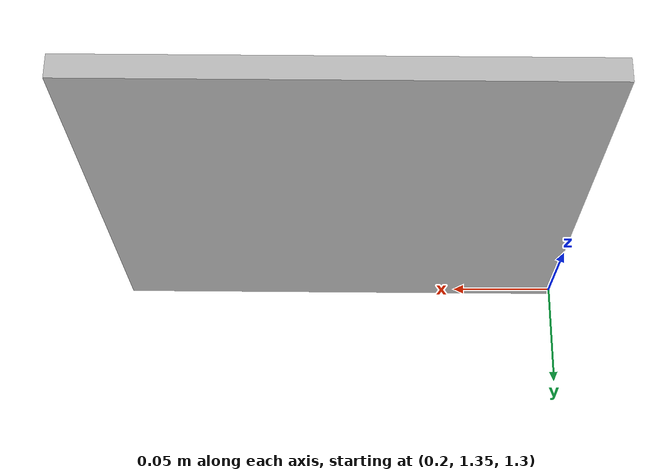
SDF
<?xml version='1.0'?>
<sdf version='1.7'>
  <model name='VTOL3'>
    <link name='link'>
      <inertial>
        <mass>1</mass>
        <inertia>
          <ixx>0.166667</ixx>
          <ixy>0</ixy>
          <ixz>0</ixz>
          <iyy>0.166667</iyy>
          <iyz>0</iyz>
          <izz>0.166667</izz>
        </inertia>
        <pose>0 0 0 0 -0 0</pose>
      </inertial>
      <self_collide>0</self_collide>
      <enable_wind>0</enable_wind>
      <kinematic>0</kinematic>
      <pose>0.309741 1.35591 1.4279 0 -0 0</pose>
      <gravity>0</gravity>
      <visual name='visual'>
        <geometry>
          <box>
            <size>0.21 0.01 0.21</size>
          </box>
        </geometry>
        <material>
          <script>
            <uri>model://VTOL3/materials/scripts/model.material</uri>
            <name>Texture3</name>
          </script>
        </material>
        <pose>0 0 0 0 -0 0</pose>
        <transparency>0</transparency>
        <cast_shadows>1</cast_shadows>
      </visual>
    </link>
    <static>0</static>
    <allow_auto_disable>1</allow_auto_disable>
  </model>
</sdf>
